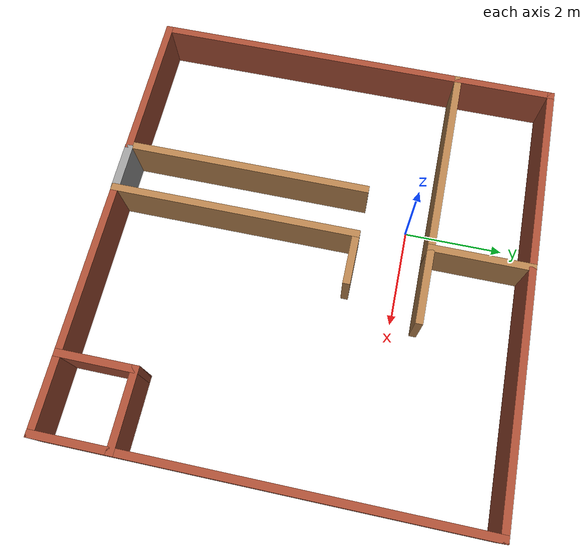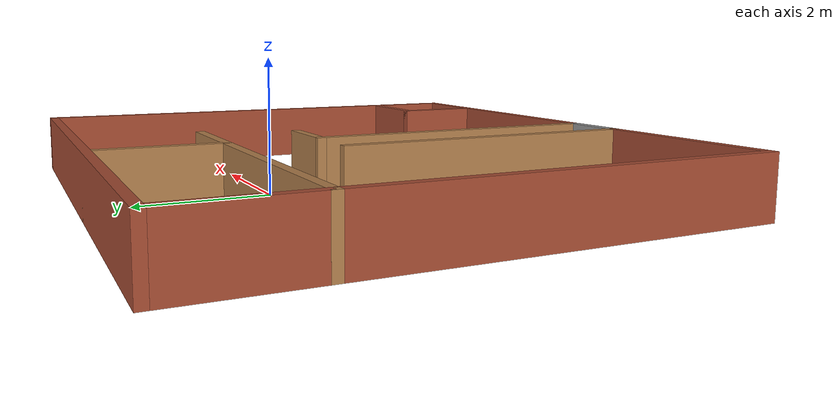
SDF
<?xml version='1.0'?>
<sdf version='1.7'>
  <model name='restaurant.world'>
    <pose>1 -1.75 0 0 -0 0</pose>
    <link name='Door_0'>
      <collision name='Door_0_Collision'>
        <geometry>
          <box>
            <size>1 0.17 1.0</size>
          </box>
        </geometry>
        <pose>0 0 0.25 0 -0 0</pose>
      </collision>
      <visual name='Door_0_Visual'>
        <pose>0 0 0.25 0 -0 0</pose>
        <geometry>
          <box>
            <size>1 0.17 1.0</size>
          </box>
        </geometry>
        <material>
          <script>
            <uri>file://media/materials/scripts/gazebo.material</uri>
            <name>Gazebo/Grey</name>
          </script>
        </material>
      </visual>
      <pose>-0.989952 -4.24779 0 0 -0 0</pose>
    </link>
    <link name='Wall_12'>
      <collision name='Wall_12_Collision'>
        <geometry>
          <box>
            <size>8.65 0.15 1.0</size>
          </box>
        </geometry>
        <pose>0 0 0.25 0 -0 0</pose>
      </collision>
      <visual name='Wall_12_Visual'>
        <pose>0 0 0.25 0 -0 0</pose>
        <geometry>
          <box>
            <size>8.65 0.15 1.0</size>
          </box>
        </geometry>
        <material>
          <script>
            <uri>file://media/materials/scripts/gazebo.material</uri>
            <name>Gazebo/Bricks</name>
          </script>
          <ambient>1 1 1 1</ambient>
        </material>
        <meta>
          <layer>0</layer>
        </meta>
      </visual>
      <pose>-4.5 0 0 0 -0 -1.5708</pose>
    </link>
    <link name='Wall_14'>
      <collision name='Wall_14_Collision'>
        <geometry>
          <box>
            <size>9.15 0.15 1.0</size>
          </box>
        </geometry>
        <pose>0 0 0.25 0 -0 0</pose>
      </collision>
      <visual name='Wall_14_Visual'>
        <pose>0 0 0.25 0 -0 0</pose>
        <geometry>
          <box>
            <size>9.15 0.15 1.0</size>
          </box>
        </geometry>
        <material>
          <script>
            <uri>file://media/materials/scripts/gazebo.material</uri>
            <name>Gazebo/Bricks</name>
          </script>
          <ambient>1 1 1 1</ambient>
        </material>
        <meta>
          <layer>0</layer>
        </meta>
      </visual>
      <pose>-0 4.25 0 0 -0 0</pose>
    </link>
    <link name='Wall_16'>
      <collision name='Wall_16_Collision'>
        <geometry>
          <box>
            <size>8.65 0.15 1.0</size>
          </box>
        </geometry>
        <pose>0 0 0.25 0 -0 0</pose>
      </collision>
      <visual name='Wall_16_Visual'>
        <pose>0 0 0.25 0 -0 0</pose>
        <geometry>
          <box>
            <size>8.65 0.15 1.0</size>
          </box>
        </geometry>
        <material>
          <script>
            <uri>file://media/materials/scripts/gazebo.material</uri>
            <name>Gazebo/Bricks</name>
          </script>
          <ambient>1 1 1 1</ambient>
        </material>
        <meta>
          <layer>0</layer>
        </meta>
      </visual>
      <pose>4.5 0 0 0 -0 -1.5708</pose>
    </link>
    <link name='Wall_18'>
      <collision name='Wall_18_Collision'>
        <geometry>
          <box>
            <size>5.15 0.15 1.0</size>
          </box>
        </geometry>
        <pose>0 0 0.25 0 -0 0</pose>
      </collision>
      <visual name='Wall_18_Visual'>
        <pose>0 0 0.25 0 -0 0</pose>
        <geometry>
          <box>
            <size>5.15 0.15 1.0</size>
          </box>
        </geometry>
        <material>
          <script>
            <uri>file://media/materials/scripts/gazebo.material</uri>
            <name>Gazebo/Bricks</name>
          </script>
          <ambient>1 1 1 1</ambient>
        </material>
        <meta>
          <layer>0</layer>
        </meta>
      </visual>
      <pose>2 -4.25 0 0 -0 3.14159</pose>
    </link>
    <link name='Wall_20'>
      <collision name='Wall_20_Collision'>
        <geometry>
          <box>
            <size>3.15 0.15 1.0</size>
          </box>
        </geometry>
        <pose>0 0 0.25 0 -0 0</pose>
      </collision>
      <visual name='Wall_20_Visual'>
        <pose>0 0 0.25 0 -0 0</pose>
        <geometry>
          <box>
            <size>3.15 0.15 1.0</size>
          </box>
        </geometry>
        <material>
          <script>
            <uri>file://media/materials/scripts/gazebo.material</uri>
            <name>Gazebo/Bricks</name>
          </script>
          <ambient>1 1 1 1</ambient>
        </material>
        <meta>
          <layer>0</layer>
        </meta>
      </visual>
      <pose>-3 -4.25 0 0 -0 0</pose>
    </link>
    <link name='Wall_22'>
      <collision name='Wall_22_Collision'>
        <geometry>
          <box>
            <size>5.15 0.15 1.0</size>
          </box>
        </geometry>
        <pose>0 0 0.25 0 -0 0</pose>
      </collision>
      <visual name='Wall_22_Visual'>
        <pose>0 0 0.25 0 -0 0</pose>
        <geometry>
          <box>
            <size>5.15 0.15 1.0</size>
          </box>
        </geometry>
        <material>
          <script>
            <uri>file://media/materials/scripts/gazebo.material</uri>
            <name>Gazebo/Wood</name>
          </script>
          <ambient>1 1 1 1</ambient>
        </material>
        <meta>
          <layer>0</layer>
        </meta>
      </visual>
      <pose>-1.5 -1.75 0 0 -0 1.5708</pose>
    </link>
    <link name='Wall_24'>
      <collision name='Wall_24_Collision'>
        <geometry>
          <box>
            <size>5.15 0.15 1.0</size>
          </box>
        </geometry>
        <pose>0 0 0.25 0 -0 0</pose>
      </collision>
      <visual name='Wall_24_Visual'>
        <pose>0 0 0.25 0 -0 0</pose>
        <geometry>
          <box>
            <size>5.15 0.15 1.0</size>
          </box>
        </geometry>
        <material>
          <script>
            <uri>file://media/materials/scripts/gazebo.material</uri>
            <name>Gazebo/Wood</name>
          </script>
          <ambient>1 1 1 1</ambient>
        </material>
        <meta>
          <layer>0</layer>
        </meta>
      </visual>
      <pose>-0.5 -1.75 0 0 -0 -1.5708</pose>
    </link>
    <link name='Wall_26'>
      <collision name='Wall_26_Collision'>
        <geometry>
          <box>
            <size>5.65 0.15 1.0</size>
          </box>
        </geometry>
        <pose>0 0 0.25 0 -0 0</pose>
      </collision>
      <visual name='Wall_26_Visual'>
        <pose>0 0 0.25 0 -0 0</pose>
        <geometry>
          <box>
            <size>5.65 0.15 1.0</size>
          </box>
        </geometry>
        <material>
          <script>
            <uri>file://media/materials/scripts/gazebo.material</uri>
            <name>Gazebo/Wood</name>
          </script>
          <ambient>1 1 1 1</ambient>
        </material>
        <meta>
          <layer>0</layer>
        </meta>
      </visual>
      <pose>-1.75 2.25 0 0 -0 0</pose>
    </link>
    <link name='Wall_28'>
      <collision name='Wall_28_Collision'>
        <geometry>
          <box>
            <size>2.15 0.15 1.0</size>
          </box>
        </geometry>
        <pose>0 0 0.25 0 -0 0</pose>
      </collision>
      <visual name='Wall_28_Visual'>
        <pose>0 0 0.25 0 -0 0</pose>
        <geometry>
          <box>
            <size>2.15 0.15 1.0</size>
          </box>
        </geometry>
        <material>
          <script>
            <uri>file://media/materials/scripts/gazebo.material</uri>
            <name>Gazebo/Wood</name>
          </script>
          <ambient>1 1 1 1</ambient>
        </material>
        <meta>
          <layer>0</layer>
        </meta>
      </visual>
      <pose>-0.5 3.25 0 0 -0 -1.5708</pose>
    </link>
    <link name='Wall_30'>
      <collision name='Wall_30_Collision'>
        <geometry>
          <box>
            <size>1.15 0.15 1.0</size>
          </box>
        </geometry>
        <pose>0 0 0.25 0 -0 0</pose>
      </collision>
      <visual name='Wall_30_Visual'>
        <pose>0 0 0.25 0 -0 0</pose>
        <geometry>
          <box>
            <size>1.15 0.15 1.0</size>
          </box>
        </geometry>
        <material>
          <script>
            <uri>file://media/materials/scripts/gazebo.material</uri>
            <name>Gazebo/Wood</name>
          </script>
          <ambient>1 1 1 1</ambient>
        </material>
        <meta>
          <layer>0</layer>
        </meta>
      </visual>
      <pose>-0 0.75 0 0 -0 0</pose>
    </link>
    <link name='Wall_32'>
      <collision name='Wall_32_Collision'>
        <geometry>
          <box>
            <size>1.65 0.15 1.0</size>
          </box>
        </geometry>
        <pose>0 0 0.25 0 -0 0</pose>
      </collision>
      <visual name='Wall_32_Visual'>
        <pose>0 0 0.25 0 -0 0</pose>
        <geometry>
          <box>
            <size>1.65 0.15 1.0</size>
          </box>
        </geometry>
        <material>
          <script>
            <uri>file://media/materials/scripts/gazebo.material</uri>
            <name>Gazebo/Bricks</name>
          </script>
          <ambient>1 1 1 1</ambient>
        </material>
        <meta>
          <layer>0</layer>
        </meta>
      </visual>
      <pose>3 -3.5 0 0 -0 1.5708</pose>
    </link>
    <link name='Wall_33'>
      <collision name='Wall_33_Collision'>
        <geometry>
          <box>
            <size>1.65 0.15 1.0</size>
          </box>
        </geometry>
        <pose>0 0 0.25 0 -0 0</pose>
      </collision>
      <visual name='Wall_33_Visual'>
        <pose>0 0 0.25 0 -0 0</pose>
        <geometry>
          <box>
            <size>1.65 0.15 1.0</size>
          </box>
        </geometry>
        <material>
          <script>
            <uri>file://media/materials/scripts/gazebo.material</uri>
            <name>Gazebo/Bricks</name>
          </script>
          <ambient>1 1 1 1</ambient>
        </material>
        <meta>
          <layer>0</layer>
        </meta>
      </visual>
      <pose>3.75 -2.75 0 0 -0 0</pose>
    </link>
    <static>1</static>
  </model>
</sdf>
